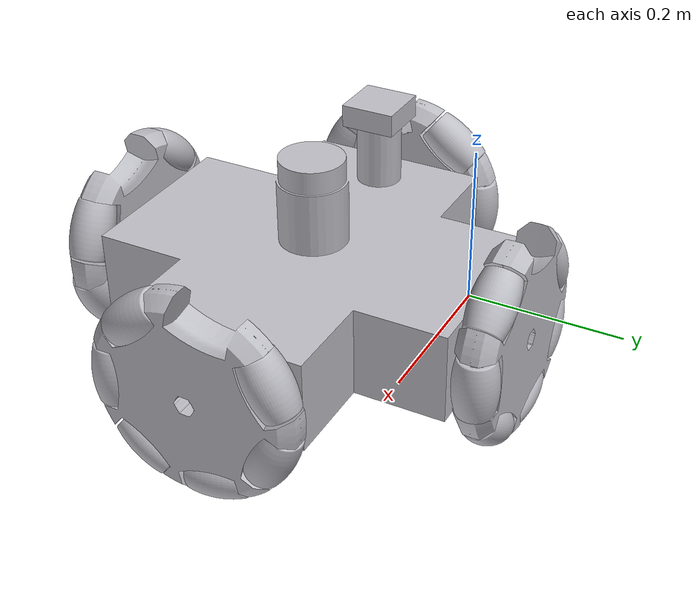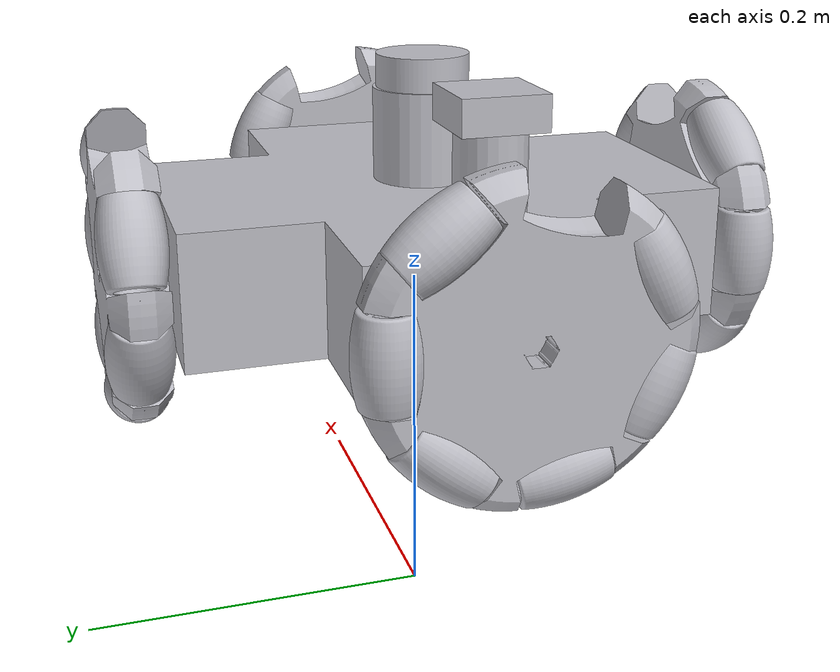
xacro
<?xml version="1.0" ?>
<robot name="robot" xmlns:xacro="http://www.ros.org/wiki/xacro">

<xacro:include filename="$(find robot_description)/urdf/materials.xacro" />
<xacro:include filename="$(find robot_description)/urdf/robot.trans" />
<xacro:include filename="$(find robot_description)/urdf/robot.gazebo" />
<link name ="base_footprint"/>
<link name="base_link">
  <inertial>
    <origin xyz="0.24111155939066492 -0.07977210689211883 0.14685100507879903" rpy="0 0 0"/>
    <mass value="97.70655736264345"/>
    <inertia ixx="1.04738" iyy="1.071388" izz="1.910052" ixy="-0.0" iyz="0.0" ixz="0.013263"/>
  </inertial>
  <visual>
    <origin xyz="0 0 0" rpy="0 0 0"/>
    <geometry>
      <mesh filename="file://$(find robot_description)/meshes/base_link.stl" scale="0.001 0.001 0.001"/>
    </geometry>
    <material name="silver"/>
  </visual>
  <collision>
    <origin xyz="0 0 0" rpy="0 0 0"/>
    <geometry>
      <mesh filename="file://$(find robot_description)/meshes/base_link.stl" scale="0.001 0.001 0.001"/>
    </geometry>
  </collision>
</link>

<link name="wheel_1">
  <inertial>
    <origin xyz="-0.020913365946371967 2.255264061681861e-06 7.483123681401027e-06" rpy="0 0 0"/>
    <mass value="7.092071942604584"/>
    <inertia ixx="0.029308" iyy="0.015702" izz="0.015698" ixy="-0.0" iyz="-2e-06" ixz="-0.0"/>
  </inertial>
  <visual>
    <origin xyz="-0.042768 0.079772 -0.1438" rpy="0 0 0"/>
    <geometry>
      <mesh filename="file://$(find robot_description)/meshes/wheel_1.stl" scale="0.001 0.001 0.001"/>
    </geometry>
    <material name="silver"/>
  </visual>
  <collision>
    <origin xyz="-0.042768 0.079772 -0.1438" rpy="0 0 0"/>
    <geometry>
      <mesh filename="file://$(find robot_description)/meshes/wheel_1.stl" scale="0.001 0.001 0.001"/>
    </geometry>
  </collision>
</link>

<link name="roller_1_4">
  <inertial>
    <origin xyz="0.0002714843752283508 -3.7326580984431423e-07 0.03111365126493347" rpy="0 0 0"/>
    <mass value="0.504347652300611"/>
    <inertia ixx="0.000236" iyy="0.000236" izz="0.000175" ixy="-0.0" iyz="0.0" ixz="-1e-06"/>
  </inertial>
  <visual>
    <origin xyz="-0.020768 -0.011544 -0.110226" rpy="0 0 0"/>
    <geometry>
      <mesh filename="file://$(find robot_description)/meshes/roller_1_4.stl" scale="0.001 0.001 0.001"/>
    </geometry>
    <material name="silver"/>
  </visual>
  <collision>
    <origin xyz="-0.020768 -0.011544 -0.110226" rpy="0 0 0"/>
    <geometry>
      <mesh filename="file://$(find robot_description)/meshes/roller_1_4.stl" scale="0.001 0.001 0.001"/>
    </geometry>
  </collision>
</link>

<link name="roller_1_5">
  <inertial>
    <origin xyz="0.0002722996502091367 0.03042518984782501 -0.0069439932270144444" rpy="0 0 0"/>
    <mass value="0.504347652300611"/>
    <inertia ixx="0.000236" iyy="0.000178" izz="0.000233" ixy="-1e-06" iyz="1.3e-05" ixz="0.0"/>
  </inertial>
  <visual>
    <origin xyz="-0.020768 0.132825 -0.062245" rpy="0 0 0"/>
    <geometry>
      <mesh filename="file://$(find robot_description)/meshes/roller_1_5.stl" scale="0.001 0.001 0.001"/>
    </geometry>
    <material name="silver"/>
  </visual>
  <collision>
    <origin xyz="-0.020768 0.132825 -0.062245" rpy="0 0 0"/>
    <geometry>
      <mesh filename="file://$(find robot_description)/meshes/roller_1_5.stl" scale="0.001 0.001 0.001"/>
    </geometry>
  </collision>
</link>

<link name="roller_1_6">
  <inertial>
    <origin xyz="0.0002714843752285971 0.013499551149427913 -0.028032822727647927" rpy="0 0 0"/>
    <mass value="0.504347652300611"/>
    <inertia ixx="0.000236" iyy="0.000224" izz="0.000186" ixy="-0.0" iyz="2.4e-05" ixz="0.0"/>
  </inertial>
  <visual>
    <origin xyz="-0.020768 0.176612 -0.13443" rpy="0 0 0"/>
    <geometry>
      <mesh filename="file://$(find robot_description)/meshes/roller_1_6.stl" scale="0.001 0.001 0.001"/>
    </geometry>
    <material name="silver"/>
  </visual>
  <collision>
    <origin xyz="-0.020768 0.176612 -0.13443" rpy="0 0 0"/>
    <geometry>
      <mesh filename="file://$(find robot_description)/meshes/roller_1_6.stl" scale="0.001 0.001 0.001"/>
    </geometry>
  </collision>
</link>

<link name="roller_1_2">
  <inertial>
    <origin xyz="0.00027229965020902913 0.02439841665668805 0.019456906056625527" rpy="0 0 0"/>
    <mass value="0.504347652300611"/>
    <inertia ixx="0.000236" iyy="0.000198" izz="0.000212" ixy="-0.0" iyz="-3e-05" ixz="-0.0"/>
  </inertial>
  <visual>
    <origin xyz="-0.020768 0.049087 -0.051474" rpy="0 0 0"/>
    <geometry>
      <mesh filename="file://$(find robot_description)/meshes/roller_1_2.stl" scale="0.001 0.001 0.001"/>
    </geometry>
    <material name="silver"/>
  </visual>
  <collision>
    <origin xyz="-0.020768 0.049087 -0.051474" rpy="0 0 0"/>
    <geometry>
      <mesh filename="file://$(find robot_description)/meshes/roller_1_2.stl" scale="0.001 0.001 0.001"/>
    </geometry>
  </collision>
</link>

<link name="wheel_2">
  <inertial>
    <origin xyz="-2.4030989059231622e-06 -0.020913431895765222 7.483123681567561e-06" rpy="0 0 0"/>
    <mass value="7.092071942604584"/>
    <inertia ixx="0.015702" iyy="0.029308" izz="0.015698" ixy="0.0" iyz="-0.0" ixz="2e-06"/>
  </inertial>
  <visual>
    <origin xyz="-0.242768 0.279772 -0.1438" rpy="0 0 0"/>
    <geometry>
      <mesh filename="file://$(find robot_description)/meshes/wheel_2.stl" scale="0.001 0.001 0.001"/>
    </geometry>
    <material name="silver"/>
  </visual>
  <collision>
    <origin xyz="-0.242768 0.279772 -0.1438" rpy="0 0 0"/>
    <geometry>
      <mesh filename="file://$(find robot_description)/meshes/wheel_2.stl" scale="0.001 0.001 0.001"/>
    </geometry>
  </collision>
</link>

<link name="wheel_3">
  <inertial>
    <origin xyz="0.020913284060920245 -2.469048299535981e-06 7.483123681401027e-06" rpy="0 0 0"/>
    <mass value="7.092071942604584"/>
    <inertia ixx="0.029308" iyy="0.015702" izz="0.015698" ixy="-0.0" iyz="2e-06" ixz="0.0"/>
  </inertial>
  <visual>
    <origin xyz="-0.442768 0.079772 -0.1438" rpy="0 0 0"/>
    <geometry>
      <mesh filename="file://$(find robot_description)/meshes/wheel_3.stl" scale="0.001 0.001 0.001"/>
    </geometry>
    <material name="silver"/>
  </visual>
  <collision>
    <origin xyz="-0.442768 0.079772 -0.1438" rpy="0 0 0"/>
    <geometry>
      <mesh filename="file://$(find robot_description)/meshes/wheel_3.stl" scale="0.001 0.001 0.001"/>
    </geometry>
  </collision>
</link>

<link name="wheel_4">
  <inertial>
    <origin xyz="2.3212134547534458e-06 0.02091321811152741 7.483123681567561e-06" rpy="0 0 0"/>
    <mass value="7.092071942604584"/>
    <inertia ixx="0.015702" iyy="0.029308" izz="0.015698" ixy="0.0" iyz="0.0" ixz="-2e-06"/>
  </inertial>
  <visual>
    <origin xyz="-0.242768 -0.120228 -0.1438" rpy="0 0 0"/>
    <geometry>
      <mesh filename="file://$(find robot_description)/meshes/wheel_4.stl" scale="0.001 0.001 0.001"/>
    </geometry>
    <material name="silver"/>
  </visual>
  <collision>
    <origin xyz="-0.242768 -0.120228 -0.1438" rpy="0 0 0"/>
    <geometry>
      <mesh filename="file://$(find robot_description)/meshes/wheel_4.stl" scale="0.001 0.001 0.001"/>
    </geometry>
  </collision>
</link>

<link name="roller_2_5">
  <inertial>
    <origin xyz="0.024398625276668112 0.00027223369917195317 0.01945693684387137" rpy="0 0 0"/>
    <mass value="0.5043476523006098"/>
    <inertia ixx="0.000198" iyy="0.000236" izz="0.000212" ixy="-0.0" iyz="-0.0" ixz="-3e-05"/>
  </inertial>
  <visual>
    <origin xyz="-0.159584 0.301772 -0.194261" rpy="0 0 0"/>
    <geometry>
      <mesh filename="file://$(find robot_description)/meshes/roller_2_5.stl" scale="0.001 0.001 0.001"/>
    </geometry>
    <material name="silver"/>
  </visual>
  <collision>
    <origin xyz="-0.159584 0.301772 -0.194261" rpy="0 0 0"/>
    <geometry>
      <mesh filename="file://$(find robot_description)/meshes/roller_2_5.stl" scale="0.001 0.001 0.001"/>
    </geometry>
  </collision>
</link>

<link name="roller_2_4">
  <inertial>
    <origin xyz="2.254317875427514e-07 0.0002714184241910389 0.031113651265674877" rpy="0 0 0"/>
    <mass value="0.5043476523006098"/>
    <inertia ixx="0.000236" iyy="0.000236" izz="0.000175" ixy="-0.0" iyz="-1e-06" ixz="0.0"/>
  </inertial>
  <visual>
    <origin xyz="-0.151452 0.301772 -0.110226" rpy="0 0 0"/>
    <geometry>
      <mesh filename="file://$(find robot_description)/meshes/roller_2_4.stl" scale="0.001 0.001 0.001"/>
    </geometry>
    <material name="silver"/>
  </visual>
  <collision>
    <origin xyz="-0.151452 0.301772 -0.110226" rpy="0 0 0"/>
    <geometry>
      <mesh filename="file://$(find robot_description)/meshes/roller_2_4.stl" scale="0.001 0.001 0.001"/>
    </geometry>
  </collision>
</link>

<link name="roller_2_3">
  <inertial>
    <origin xyz="-0.02432552480857772 0.0002714184243299278 0.019398658856668742" rpy="0 0 0"/>
    <mass value="0.5043476523006098"/>
    <inertia ixx="0.000198" iyy="0.000236" izz="0.000212" ixy="0.0" iyz="-0.0" ixz="3e-05"/>
  </inertial>
  <visual>
    <origin xyz="-0.212083 0.301772 -0.051474" rpy="0 0 0"/>
    <geometry>
      <mesh filename="file://$(find robot_description)/meshes/roller_2_3.stl" scale="0.001 0.001 0.001"/>
    </geometry>
    <material name="silver"/>
  </visual>
  <collision>
    <origin xyz="-0.212083 0.301772 -0.051474" rpy="0 0 0"/>
    <geometry>
      <mesh filename="file://$(find robot_description)/meshes/roller_2_3.stl" scale="0.001 0.001 0.001"/>
    </geometry>
  </collision>
</link>

<link name="roller_2_2">
  <inertial>
    <origin xyz="-0.030333258690093567 0.0002714184241914275 -0.006923205040461733" rpy="0 0 0"/>
    <mass value="0.5043476523006098"/>
    <inertia ixx="0.000178" iyy="0.000236" izz="0.000233" ixy="1e-06" iyz="0.0" ixz="-1.3e-05"/>
  </inertial>
  <visual>
    <origin xyz="-0.29582 0.301772 -0.062245" rpy="0 0 0"/>
    <geometry>
      <mesh filename="file://$(find robot_description)/meshes/roller_2_2.stl" scale="0.001 0.001 0.001"/>
    </geometry>
    <material name="silver"/>
  </visual>
  <collision>
    <origin xyz="-0.29582 0.301772 -0.062245" rpy="0 0 0"/>
    <geometry>
      <mesh filename="file://$(find robot_description)/meshes/roller_2_2.stl" scale="0.001 0.001 0.001"/>
    </geometry>
  </collision>
</link>

<link name="roller_2_7">
  <inertial>
    <origin xyz="0.013499883392466938 0.00027141842613015443 -0.028031998836505367" rpy="0 0 0"/>
    <mass value="0.5043476523006098"/>
    <inertia ixx="0.000224" iyy="0.000236" izz="0.000186" ixy="-0.0" iyz="0.0" ixz="2.4e-05"/>
  </inertial>
  <visual>
    <origin xyz="-0.310473 0.301772 -0.21367" rpy="0 0 0"/>
    <geometry>
      <mesh filename="file://$(find robot_description)/meshes/roller_2_7.stl" scale="0.001 0.001 0.001"/>
    </geometry>
    <material name="silver"/>
  </visual>
  <collision>
    <origin xyz="-0.310473 0.301772 -0.21367" rpy="0 0 0"/>
    <geometry>
      <mesh filename="file://$(find robot_description)/meshes/roller_2_7.stl" scale="0.001 0.001 0.001"/>
    </geometry>
  </collision>
</link>

<link name="roller_3_4">
  <inertial>
    <origin xyz="-0.00027156625903568266 0.024325519647217297 0.019398689639133104" rpy="0 0 0"/>
    <mass value="0.5043476523006116"/>
    <inertia ixx="0.000236" iyy="0.000198" izz="0.000212" ixy="0.0" iyz="-3e-05" ixz="0.0"/>
  </inertial>
  <visual>
    <origin xyz="-0.464768 0.162956 -0.194261" rpy="0 0 0"/>
    <geometry>
      <mesh filename="file://$(find robot_description)/meshes/roller_3_4.stl" scale="0.001 0.001 0.001"/>
    </geometry>
    <material name="silver"/>
  </visual>
  <collision>
    <origin xyz="-0.464768 0.162956 -0.194261" rpy="0 0 0"/>
    <geometry>
      <mesh filename="file://$(find robot_description)/meshes/roller_3_4.stl" scale="0.001 0.001 0.001"/>
    </geometry>
  </collision>
</link>

<link name="roller_3_3">
  <inertial>
    <origin xyz="-0.0002715662590359047 1.5948517689823305e-07 0.031113651265698858" rpy="0 0 0"/>
    <mass value="0.5043476523006116"/>
    <inertia ixx="0.000236" iyy="0.000236" izz="0.000175" ixy="-0.0" iyz="-0.0" ixz="1e-06"/>
  </inertial>
  <visual>
    <origin xyz="-0.464768 0.171088 -0.110226" rpy="0 0 0"/>
    <geometry>
      <mesh filename="file://$(find robot_description)/meshes/roller_3_3.stl" scale="0.001 0.001 0.001"/>
    </geometry>
    <material name="silver"/>
  </visual>
  <collision>
    <origin xyz="-0.464768 0.171088 -0.110226" rpy="0 0 0"/>
    <geometry>
      <mesh filename="file://$(find robot_description)/meshes/roller_3_3.stl" scale="0.001 0.001 0.001"/>
    </geometry>
  </collision>
</link>

<link name="roller_3_5">
  <inertial>
    <origin xyz="-0.0002723815340174296 -0.024398630439276786 0.0194569060599211" rpy="0 0 0"/>
    <mass value="0.5043476523006116"/>
    <inertia ixx="0.000236" iyy="0.000198" izz="0.000212" ixy="-0.0" iyz="3e-05" ixz="0.0"/>
  </inertial>
  <visual>
    <origin xyz="-0.464768 0.110457 -0.051474" rpy="0 0 0"/>
    <geometry>
      <mesh filename="file://$(find robot_description)/meshes/roller_3_5.stl" scale="0.001 0.001 0.001"/>
    </geometry>
    <material name="silver"/>
  </visual>
  <collision>
    <origin xyz="-0.464768 0.110457 -0.051474" rpy="0 0 0"/>
    <geometry>
      <mesh filename="file://$(find robot_description)/meshes/roller_3_5.stl" scale="0.001 0.001 0.001"/>
    </geometry>
  </collision>
</link>

<link name="roller_3_7">
  <inertial>
    <origin xyz="-0.00027156625903657083 -0.030333324640129437 -0.006923205037754641" rpy="0 0 0"/>
    <mass value="0.5043476523006116"/>
    <inertia ixx="0.000236" iyy="0.000178" izz="0.000233" ixy="-1e-06" iyz="-1.3e-05" ixz="-0.0"/>
  </inertial>
  <visual>
    <origin xyz="-0.464768 0.02672 -0.062245" rpy="0 0 0"/>
    <geometry>
      <mesh filename="file://$(find robot_description)/meshes/roller_3_7.stl" scale="0.001 0.001 0.001"/>
    </geometry>
    <material name="silver"/>
  </visual>
  <collision>
    <origin xyz="-0.464768 0.02672 -0.062245" rpy="0 0 0"/>
    <geometry>
      <mesh filename="file://$(find robot_description)/meshes/roller_3_7.stl" scale="0.001 0.001 0.001"/>
    </geometry>
  </collision>
</link>

<link name="roller_3_6">
  <inertial>
    <origin xyz="-0.0002715662590359602 -0.013499764937244254 -0.028032822726773834" rpy="0 0 0"/>
    <mass value="0.5043476523006116"/>
    <inertia ixx="0.000236" iyy="0.000224" izz="0.000186" ixy="-0.0" iyz="-2.4e-05" ixz="-0.0"/>
  </inertial>
  <visual>
    <origin xyz="-0.464768 -0.017068 -0.13443" rpy="0 0 0"/>
    <geometry>
      <mesh filename="file://$(find robot_description)/meshes/roller_3_6.stl" scale="0.001 0.001 0.001"/>
    </geometry>
    <material name="silver"/>
  </visual>
  <collision>
    <origin xyz="-0.464768 -0.017068 -0.13443" rpy="0 0 0"/>
    <geometry>
      <mesh filename="file://$(find robot_description)/meshes/roller_3_6.stl" scale="0.001 0.001 0.001"/>
    </geometry>
  </collision>
</link>

<link name="roller_4_3">
  <inertial>
    <origin xyz="-3.073187158642021e-07 -0.0002716322084291567 0.03111365126568784" rpy="0 0 0"/>
    <mass value="0.5043476523006097"/>
    <inertia ixx="0.000236" iyy="0.000236" izz="0.000175" ixy="0.0" iyz="1e-06" ixz="0.0"/>
  </inertial>
  <visual>
    <origin xyz="-0.334084 -0.142228 -0.110226" rpy="0 0 0"/>
    <geometry>
      <mesh filename="file://$(find robot_description)/meshes/roller_4_3.stl" scale="0.001 0.001 0.001"/>
    </geometry>
    <material name="silver"/>
  </visual>
  <collision>
    <origin xyz="-0.334084 -0.142228 -0.110226" rpy="0 0 0"/>
    <geometry>
      <mesh filename="file://$(find robot_description)/meshes/roller_4_3.stl" scale="0.001 0.001 0.001"/>
    </geometry>
  </collision>
</link>

<link name="roller_4_4">
  <inertial>
    <origin xyz="0.024325442923425256 -0.00027163220842882363 0.019398658856316413" rpy="0 0 0"/>
    <mass value="0.5043476523006097"/>
    <inertia ixx="0.000198" iyy="0.000236" izz="0.000212" ixy="0.0" iyz="0.0" ixz="-3e-05"/>
  </inertial>
  <visual>
    <origin xyz="-0.273453 -0.142228 -0.051474" rpy="0 0 0"/>
    <geometry>
      <mesh filename="file://$(find robot_description)/meshes/roller_4_4.stl" scale="0.001 0.001 0.001"/>
    </geometry>
    <material name="silver"/>
  </visual>
  <collision>
    <origin xyz="-0.273453 -0.142228 -0.051474" rpy="0 0 0"/>
    <geometry>
      <mesh filename="file://$(find robot_description)/meshes/roller_4_4.stl" scale="0.001 0.001 0.001"/>
    </geometry>
  </collision>
</link>

<link name="roller_4_7">
  <inertial>
    <origin xyz="-0.013499767590025025 0.0002714184242297579 -0.02803283743471971" rpy="0 0 0"/>
    <mass value="0.5043476523006097"/>
    <inertia ixx="0.000224" iyy="0.000236" izz="0.000186" ixy="0.0" iyz="0.0" ixz="-2.4e-05"/>
  </inertial>
  <visual>
    <origin xyz="-0.175111 -0.142228 -0.213667" rpy="0 0 0"/>
    <geometry>
      <mesh filename="file://$(find robot_description)/meshes/roller_4_7.stl" scale="0.001 0.001 0.001"/>
    </geometry>
    <material name="silver"/>
  </visual>
  <collision>
    <origin xyz="-0.175111 -0.142228 -0.213667" rpy="0 0 0"/>
    <geometry>
      <mesh filename="file://$(find robot_description)/meshes/roller_4_7.stl" scale="0.001 0.001 0.001"/>
    </geometry>
  </collision>
</link>

<link name="lidar_1">
  <inertial>
    <origin xyz="-4.094272545995814e-08 -1.0689211875358762e-07 0.012500469026049621" rpy="0 0 0"/>
    <mass value="0.7552585088770711"/>
    <inertia ixx="0.000271" iyy="0.000271" izz="0.000463" ixy="-0.0" iyz="-0.0" ixz="-0.0"/>
  </inertial>
  <visual>
    <origin xyz="-0.242768 0.079772 -0.2638" rpy="0 0 0"/>
    <geometry>
      <mesh filename="file://$(find robot_description)/meshes/lidar_1.stl" scale="0.001 0.001 0.001"/>
    </geometry>
    <material name="silver"/>
  </visual>
  <collision>
    <origin xyz="-0.242768 0.079772 -0.2638" rpy="0 0 0"/>
    <geometry>
      <mesh filename="file://$(find robot_description)/meshes/lidar_1.stl" scale="0.001 0.001 0.001"/>
    </geometry>
  </collision>
</link>

<link name="camera_1">
  <inertial>
    <origin xyz="-4.094272545995814e-08 -1.0689211872583204e-07 0.012500469026049121" rpy="0 0 0"/>
    <mass value="0.7064999999999999"/>
    <inertia ixx="0.000249" iyy="0.000249" izz="0.000424" ixy="0.0" iyz="0.0" ixz="0.0"/>
  </inertial>
  <visual>
    <origin xyz="-0.092768 0.079772 -0.2638" rpy="0 0 0"/>
    <geometry>
      <mesh filename="file://$(find robot_description)/meshes/camera_1.stl" scale="0.001 0.001 0.001"/>
    </geometry>
    <material name="silver"/>
  </visual>
  <collision>
    <origin xyz="-0.092768 0.079772 -0.2638" rpy="0 0 0"/>
    <geometry>
      <mesh filename="file://$(find robot_description)/meshes/camera_1.stl" scale="0.001 0.001 0.001"/>
    </geometry>
  </collision>
</link>

<link name="roller_4_2">
  <inertial>
    <origin xyz="-0.024398707163050704 -0.0002724474834089885 0.01945693684272362" rpy="0 0 0"/>
    <mass value="0.5043476523006097"/>
    <inertia ixx="0.000198" iyy="0.000236" izz="0.000212" ixy="-0.0" iyz="0.0" ixz="3e-05"/>
  </inertial>
  <visual>
    <origin xyz="-0.325952 -0.142228 -0.194261" rpy="0 0 0"/>
    <geometry>
      <mesh filename="file://$(find robot_description)/meshes/roller_4_2.stl" scale="0.001 0.001 0.001"/>
    </geometry>
    <material name="silver"/>
  </visual>
  <collision>
    <origin xyz="-0.325952 -0.142228 -0.194261" rpy="0 0 0"/>
    <geometry>
      <mesh filename="file://$(find robot_description)/meshes/roller_4_2.stl" scale="0.001 0.001 0.001"/>
    </geometry>
  </collision>
</link>

<link name="roller_1_1">
  <inertial>
    <origin xyz="0.0002714843752286353 -0.024325733428609123 0.01939868964147415" rpy="0 0 0"/>
    <mass value="0.504347652300611"/>
    <inertia ixx="0.000236" iyy="0.000198" izz="0.000212" ixy="0.0" iyz="3e-05" ixz="-0.0"/>
  </inertial>
  <visual>
    <origin xyz="-0.020768 -0.003412 -0.194261" rpy="0 0 0"/>
    <geometry>
      <mesh filename="file://$(find robot_description)/meshes/roller_1_1.stl" scale="0.001 0.001 0.001"/>
    </geometry>
    <material name="silver"/>
  </visual>
  <collision>
    <origin xyz="-0.020768 -0.003412 -0.194261" rpy="0 0 0"/>
    <geometry>
      <mesh filename="file://$(find robot_description)/meshes/roller_1_1.stl" scale="0.001 0.001 0.001"/>
    </geometry>
  </collision>
</link>

<link name="roller_1_3">
  <inertial>
    <origin xyz="0.00027148437633910463 -0.013500031225505638 -0.028031998836560157" rpy="0 0 0"/>
    <mass value="0.504347652300611"/>
    <inertia ixx="0.000236" iyy="0.000224" izz="0.000186" ixy="0.0" iyz="-2.4e-05" ixz="0.0"/>
  </inertial>
  <visual>
    <origin xyz="-0.020768 0.147477 -0.21367" rpy="0 0 0"/>
    <geometry>
      <mesh filename="file://$(find robot_description)/meshes/roller_1_3.stl" scale="0.001 0.001 0.001"/>
    </geometry>
    <material name="silver"/>
  </visual>
  <collision>
    <origin xyz="-0.020768 0.147477 -0.21367" rpy="0 0 0"/>
    <geometry>
      <mesh filename="file://$(find robot_description)/meshes/roller_1_3.stl" scale="0.001 0.001 0.001"/>
    </geometry>
  </collision>
</link>

<link name="roller_2_1">
  <inertial>
    <origin xyz="-0.013499698985333486 0.00027141842419081685 -0.028032822727958817" rpy="0 0 0"/>
    <mass value="0.5043476523006098"/>
    <inertia ixx="0.000224" iyy="0.000236" izz="0.000186" ixy="0.0" iyz="0.0" ixz="-2.4e-05"/>
  </inertial>
  <visual>
    <origin xyz="-0.339608 0.301772 -0.13443" rpy="0 0 0"/>
    <geometry>
      <mesh filename="file://$(find robot_description)/meshes/roller_2_1.stl" scale="0.001 0.001 0.001"/>
    </geometry>
    <material name="silver"/>
  </visual>
  <collision>
    <origin xyz="-0.339608 0.301772 -0.13443" rpy="0 0 0"/>
    <geometry>
      <mesh filename="file://$(find robot_description)/meshes/roller_2_1.stl" scale="0.001 0.001 0.001"/>
    </geometry>
  </collision>
</link>

<link name="roller_3_1">
  <inertial>
    <origin xyz="-0.00027156626111396465 0.013499817443843461 -0.0280319988361602" rpy="0 0 0"/>
    <mass value="0.5043476523006116"/>
    <inertia ixx="0.000236" iyy="0.000224" izz="0.000186" ixy="0.0" iyz="2.4e-05" ixz="-0.0"/>
  </inertial>
  <visual>
    <origin xyz="-0.464768 0.012067 -0.21367" rpy="0 0 0"/>
    <geometry>
      <mesh filename="file://$(find robot_description)/meshes/roller_3_1.stl" scale="0.001 0.001 0.001"/>
    </geometry>
    <material name="silver"/>
  </visual>
  <collision>
    <origin xyz="-0.464768 0.012067 -0.21367" rpy="0 0 0"/>
    <geometry>
      <mesh filename="file://$(find robot_description)/meshes/roller_3_1.stl" scale="0.001 0.001 0.001"/>
    </geometry>
  </collision>
</link>

<link name="roller_4_1">
  <inertial>
    <origin xyz="0.013499669003557285 0.0002714184242298967 -0.028032533585066993" rpy="0 0 0"/>
    <mass value="0.5043476523006097"/>
    <inertia ixx="0.000224" iyy="0.000236" izz="0.000186" ixy="-0.0" iyz="0.0" ixz="2.4e-05"/>
  </inertial>
  <visual>
    <origin xyz="-0.145961 -0.142228 -0.134465" rpy="0 0 0"/>
    <geometry>
      <mesh filename="file://$(find robot_description)/meshes/roller_4_1.stl" scale="0.001 0.001 0.001"/>
    </geometry>
    <material name="silver"/>
  </visual>
  <collision>
    <origin xyz="-0.145961 -0.142228 -0.134465" rpy="0 0 0"/>
    <geometry>
      <mesh filename="file://$(find robot_description)/meshes/roller_4_1.stl" scale="0.001 0.001 0.001"/>
    </geometry>
  </collision>
</link>

<link name="roller_4_6">
  <inertial>
    <origin xyz="0.030333176804983902 -0.0002716322084280465 -0.006923205039024417" rpy="0 0 0"/>
    <mass value="0.5043476523006097"/>
    <inertia ixx="0.000178" iyy="0.000236" izz="0.000233" ixy="1e-06" iyz="-0.0" ixz="1.3e-05"/>
  </inertial>
  <visual>
    <origin xyz="-0.189716 -0.142228 -0.062245" rpy="0 0 0"/>
    <geometry>
      <mesh filename="file://$(find robot_description)/meshes/roller_4_6.stl" scale="0.001 0.001 0.001"/>
    </geometry>
    <material name="silver"/>
  </visual>
  <collision>
    <origin xyz="-0.189716 -0.142228 -0.062245" rpy="0 0 0"/>
    <geometry>
      <mesh filename="file://$(find robot_description)/meshes/roller_4_6.stl" scale="0.001 0.001 0.001"/>
    </geometry>
  </collision>
</link>
<joint name="fixed" type="fixed">
  <parent link="base_footprint"/>
  <child link="base_link"/>
</joint>
<joint name="Revolute 34" type="continuous">
  <origin xyz="0.037768 -0.079772 0.1438" rpy="0 0 0"/>
  <parent link="base_link"/>
  <child link="wheel_1"/>
  <axis xyz="-1.0 0.0 0.0"/>
</joint>

<joint name="Revolute 37" type="continuous">
  <origin xyz="-0.022 0.091316 -0.033574" rpy="0 0 0"/>
  <parent link="wheel_1"/>
  <child link="roller_1_4"/>
  <axis xyz="0.008727 0.0 0.999962"/>
</joint>

<joint name="Revolute 38" type="continuous">
  <origin xyz="-0.022 -0.053053 -0.081555" rpy="0 0 0"/>
  <parent link="wheel_1"/>
  <child link="roller_1_5"/>
  <axis xyz="0.008727 0.974891 -0.222512"/>
</joint>

<joint name="Revolute 39" type="continuous">
  <origin xyz="-0.022 -0.09684 -0.00937" rpy="0 0 0"/>
  <parent link="wheel_1"/>
  <child link="roller_1_6"/>
  <axis xyz="0.008727 0.433867 -0.900935"/>
</joint>

<joint name="Revolute 41" type="continuous">
  <origin xyz="-0.022 0.030685 -0.092326" rpy="0 0 0"/>
  <parent link="wheel_1"/>
  <child link="roller_1_2"/>
  <axis xyz="0.008727 0.781802 0.623466"/>
</joint>

<joint name="Revolute 42" type="continuous">
  <origin xyz="0.242768 -0.284772 0.1438" rpy="0 0 0"/>
  <parent link="base_link"/>
  <child link="wheel_2"/>
  <axis xyz="-0.0 -1.0 -0.0"/>
</joint>

<joint name="Revolute 43" type="continuous">
  <origin xyz="0.447768 -0.079772 0.1438" rpy="0 0 0"/>
  <parent link="base_link"/>
  <child link="wheel_3"/>
  <axis xyz="1.0 -0.0 -0.0"/>
</joint>

<joint name="Revolute 44" type="continuous">
  <origin xyz="0.242768 0.125228 0.1438" rpy="0 0 0"/>
  <parent link="base_link"/>
  <child link="wheel_4"/>
  <axis xyz="0.0 1.0 0.0"/>
</joint>

<joint name="Revolute 46" type="continuous">
  <origin xyz="-0.083184 -0.022 0.050461" rpy="0 0 0"/>
  <parent link="wheel_2"/>
  <child link="roller_2_5"/>
  <axis xyz="0.781802 0.008727 0.623466"/>
</joint>

<joint name="Revolute 47" type="continuous">
  <origin xyz="-0.091316 -0.022 -0.033574" rpy="0 0 0"/>
  <parent link="wheel_2"/>
  <child link="roller_2_4"/>
  <axis xyz="-0.0 0.008727 0.999962"/>
</joint>

<joint name="Revolute 48" type="continuous">
  <origin xyz="-0.030685 -0.022 -0.092326" rpy="0 0 0"/>
  <parent link="wheel_2"/>
  <child link="roller_2_3"/>
  <axis xyz="-0.781802 0.008727 0.623466"/>
</joint>

<joint name="Revolute 49" type="continuous">
  <origin xyz="0.053052 -0.022 -0.081555" rpy="0 0 0"/>
  <parent link="wheel_2"/>
  <child link="roller_2_2"/>
  <axis xyz="-0.974891 0.008727 -0.222512"/>
</joint>

<joint name="Revolute 51" type="continuous">
  <origin xyz="0.067705 -0.022 0.06987" rpy="0 0 0"/>
  <parent link="wheel_2"/>
  <child link="roller_2_7"/>
  <axis xyz="0.433867 0.008727 -0.900935"/>
</joint>

<joint name="Revolute 53" type="continuous">
  <origin xyz="0.022 -0.083184 0.050461" rpy="0 0 0"/>
  <parent link="wheel_3"/>
  <child link="roller_3_4"/>
  <axis xyz="-0.008727 0.781802 0.623466"/>
</joint>

<joint name="Revolute 54" type="continuous">
  <origin xyz="0.022 -0.091316 -0.033574" rpy="0 0 0"/>
  <parent link="wheel_3"/>
  <child link="roller_3_3"/>
  <axis xyz="-0.008727 -0.0 0.999962"/>
</joint>

<joint name="Revolute 55" type="continuous">
  <origin xyz="0.022 -0.030685 -0.092326" rpy="0 0 0"/>
  <parent link="wheel_3"/>
  <child link="roller_3_5"/>
  <axis xyz="-0.008727 -0.781802 0.623466"/>
</joint>

<joint name="Revolute 56" type="continuous">
  <origin xyz="0.022 0.053052 -0.081555" rpy="0 0 0"/>
  <parent link="wheel_3"/>
  <child link="roller_3_7"/>
  <axis xyz="-0.008727 -0.974891 -0.222512"/>
</joint>

<joint name="Revolute 57" type="continuous">
  <origin xyz="0.022 0.09684 -0.00937" rpy="0 0 0"/>
  <parent link="wheel_3"/>
  <child link="roller_3_6"/>
  <axis xyz="-0.008727 -0.433867 -0.900935"/>
</joint>

<joint name="Revolute 61" type="continuous">
  <origin xyz="0.091316 0.022 -0.033574" rpy="0 0 0"/>
  <parent link="wheel_4"/>
  <child link="roller_4_3"/>
  <axis xyz="0.0 -0.008727 0.999962"/>
</joint>

<joint name="Revolute 62" type="continuous">
  <origin xyz="0.030685 0.022 -0.092326" rpy="0 0 0"/>
  <parent link="wheel_4"/>
  <child link="roller_4_4"/>
  <axis xyz="0.781802 -0.008727 0.623466"/>
</joint>

<joint name="Revolute 65" type="continuous">
  <origin xyz="-0.067657 0.022 0.069867" rpy="0 0 0"/>
  <parent link="wheel_4"/>
  <child link="roller_4_7"/>
  <axis xyz="-0.433867 0.008727 -0.900935"/>
</joint>

<joint name="Rigid 66" type="fixed">
  <origin xyz="0.242768 -0.079772 0.2638" rpy="0 0 0"/>
  <parent link="base_link"/>
  <child link="lidar_1"/>
</joint>

<joint name="Rigid 67" type="fixed">
  <origin xyz="0.092768 -0.079772 0.2638" rpy="0 0 0"/>
  <parent link="base_link"/>
  <child link="camera_1"/>
</joint>

<joint name="Revolute 75" type="continuous">
  <origin xyz="0.083184 0.022 0.050461" rpy="0 0 0"/>
  <parent link="wheel_4"/>
  <child link="roller_4_2"/>
  <axis xyz="-0.781802 -0.008727 0.623466"/>
</joint>

<joint name="Revolute 76" type="continuous">
  <origin xyz="-0.022 0.083184 0.050461" rpy="0 0 0"/>
  <parent link="wheel_1"/>
  <child link="roller_1_1"/>
  <axis xyz="0.008727 -0.781802 0.623466"/>
</joint>

<joint name="Revolute 78" type="continuous">
  <origin xyz="-0.022 -0.067705 0.06987" rpy="0 0 0"/>
  <parent link="wheel_1"/>
  <child link="roller_1_3"/>
  <axis xyz="0.008727 -0.433867 -0.900935"/>
</joint>

<joint name="Revolute 79" type="continuous">
  <origin xyz="0.09684 -0.022 -0.00937" rpy="0 0 0"/>
  <parent link="wheel_2"/>
  <child link="roller_2_1"/>
  <axis xyz="-0.433867 0.008727 -0.900935"/>
</joint>

<joint name="Revolute 81" type="continuous">
  <origin xyz="0.022 0.067705 0.06987" rpy="0 0 0"/>
  <parent link="wheel_3"/>
  <child link="roller_3_1"/>
  <axis xyz="-0.008727 0.433867 -0.900935"/>
</joint>

<joint name="Revolute 83" type="continuous">
  <origin xyz="-0.096807 0.022 -0.009335" rpy="0 0 0"/>
  <parent link="wheel_4"/>
  <child link="roller_4_1"/>
  <axis xyz="0.433867 0.008727 -0.900935"/>
</joint>

<joint name="Revolute 84" type="continuous">
  <origin xyz="-0.053052 0.022 -0.081555" rpy="0 0 0"/>
  <parent link="wheel_4"/>
  <child link="roller_4_6"/>
  <axis xyz="0.974891 -0.008727 -0.222512"/>
</joint>

</robot>

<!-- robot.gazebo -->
<robot name="robot" xmlns:xacro="http://www.ros.org/wiki/xacro" >

<xacro:property name="body_color" value="Gazebo/Silver" />
<xacro:property name="laser_visual"  value="true"/>
<gazebo>
  <plugin name="gazebo_ros2_control" filename="libgazebo_ros2_control.so"/>
  <robot_namespace>/robot</robot_namespace>
  <parameters>/home/user/omni_ros2/src/robot_description/config/omni_controller.yaml</parameters>
</gazebo>
<gazebo reference="base_link">
  <material>${body_color}</material>
  <mu1>10000</mu1>
  <mu2>10000</mu2>
  <self_collide>true</self_collide>
  <gravity>true</gravity>
</gazebo>

<gazebo reference="wheel_1">
  <material>${body_color}</material>
  <mu1>10000</mu1>
  <mu2>10000</mu2>
  <self_collide>true</self_collide>
</gazebo>

<gazebo reference="roller_1_4">
  <material>${body_color}</material>
  <mu1>10000</mu1>
  <mu2>10000</mu2>
  <self_collide>false</self_collide>
</gazebo>

<gazebo reference="roller_1_5">
  <material>${body_color}</material>
  <mu1>10000</mu1>
  <mu2>10000</mu2>
  <self_collide>false</self_collide>
</gazebo>

<gazebo reference="roller_1_6">
  <material>${body_color}</material>
  <mu1>10000</mu1>
  <mu2>10000</mu2>
  <self_collide>false</self_collide>
</gazebo>

<gazebo reference="roller_1_2">
  <material>${body_color}</material>
  <mu1>10000</mu1>
  <mu2>10000</mu2>
  <self_collide>false</self_collide>
</gazebo>

<gazebo reference="wheel_2">
  <material>${body_color}</material>
  <mu1>10000</mu1>
  <mu2>10000</mu2>
  <self_collide>true</self_collide>
</gazebo>

<gazebo reference="wheel_3">
  <material>${body_color}</material>
  <mu1>10000</mu1>
  <mu2>10000</mu2>
  <self_collide>true</self_collide>
</gazebo>

<gazebo reference="wheel_4">
  <material>${body_color}</material>
  <mu1>10000</mu1>
  <mu2>10000</mu2>
  <self_collide>true</self_collide>
</gazebo>

<gazebo reference="roller_2_5">
  <material>${body_color}</material>
  <mu1>10000</mu1>
  <mu2>10000</mu2>
  <self_collide>false</self_collide>
</gazebo>

<gazebo reference="roller_2_4">
  <material>${body_color}</material>
  <mu1>10000</mu1>
  <mu2>10000</mu2>
  <self_collide>false</self_collide>
</gazebo>

<gazebo reference="roller_2_3">
  <material>${body_color}</material>
  <mu1>10000</mu1>
  <mu2>10000</mu2>
  <self_collide>false</self_collide>
</gazebo>

<gazebo reference="roller_2_2">
  <material>${body_color}</material>
  <mu1>10000</mu1>
  <mu2>10000</mu2>
  <self_collide>false</self_collide>
</gazebo>

<gazebo reference="roller_2_7">
  <material>${body_color}</material>
  <mu1>10000</mu1>
  <mu2>10000</mu2>
  <self_collide>false</self_collide>
</gazebo>

<gazebo reference="roller_3_4">
  <material>${body_color}</material>
  <mu1>10000</mu1>
  <mu2>10000</mu2>
  <self_collide>false</self_collide>
</gazebo>

<gazebo reference="roller_3_3">
  <material>${body_color}</material>
  <mu1>10000</mu1>
  <mu2>10000</mu2>
  <self_collide>false</self_collide>
</gazebo>

<gazebo reference="roller_3_5">
  <material>${body_color}</material>
  <mu1>10000</mu1>
  <mu2>10000</mu2>
  <self_collide>false</self_collide>
</gazebo>

<gazebo reference="roller_3_7">
  <material>${body_color}</material>
  <mu1>10000</mu1>
  <mu2>10000</mu2>
  <self_collide>false</self_collide>
</gazebo>

<gazebo reference="roller_3_6">
  <material>${body_color}</material>
  <mu1>10000</mu1>
  <mu2>10000</mu2>
  <self_collide>false</self_collide>
</gazebo>

<gazebo reference="roller_4_3">
  <material>${body_color}</material>
  <mu1>10000</mu1>
  <mu2>10000</mu2>
  <self_collide>false</self_collide>
</gazebo>

<gazebo reference="roller_4_4">
  <material>${body_color}</material>
  <mu1>10000</mu1>
  <mu2>10000</mu2>
  <self_collide>false</self_collide>
</gazebo>

<gazebo reference="roller_4_7">
  <material>${body_color}</material>
  <mu1>10000</mu1>
  <mu2>10000</mu2>
  <self_collide>false</self_collide>
</gazebo>

<gazebo reference="lidar_1">
  <material>${body_color}</material>
  <mu1>10000</mu1>
  <mu2>10000</mu2>
  <self_collide>true</self_collide>
</gazebo>

<gazebo reference="camera_1">
  <material>${body_color}</material>
  <mu1>10000</mu1>
  <mu2>10000</mu2>
  <self_collide>true</self_collide>
</gazebo>

<gazebo reference="roller_4_2">
  <material>${body_color}</material>
  <mu1>10000</mu1>
  <mu2>10000</mu2>
  <self_collide>false</self_collide>
</gazebo>

<gazebo reference="roller_1_1">
  <material>${body_color}</material>
  <mu1>10000</mu1>
  <mu2>10000</mu2>
  <self_collide>false</self_collide>
</gazebo>

<gazebo reference="roller_1_3">
  <material>${body_color}</material>
  <mu1>10000</mu1>
  <mu2>10000</mu2>
  <self_collide>false</self_collide>
</gazebo>

<gazebo reference="roller_2_1">
  <material>${body_color}</material>
  <mu1>10000</mu1>
  <mu2>10000</mu2>
  <self_collide>false</self_collide>
</gazebo>

<gazebo reference="roller_3_1">
  <material>${body_color}</material>
  <mu1>10000</mu1>
  <mu2>10000</mu2>
  <self_collide>false</self_collide>
</gazebo>

<gazebo reference="roller_4_1">
  <material>${body_color}</material>
  <mu1>10000</mu1>
  <mu2>10000</mu2>
  <self_collide>false</self_collide>
</gazebo>

<gazebo reference="roller_4_6">
  <material>${body_color}</material>
  <mu1>10000</mu1>
  <mu2>10000</mu2>
  <self_collide>false</self_collide>
</gazebo>

<gazebo reference="lidar_1">
  <material>${body_color}</material>
  <mu1>10000</mu1>
  <mu2>10000</mu2>
  <selfCollide>true</selfCollide>
  <sensor type="ray" name="hls_lfcd_lds">
      <pose>0 0 0 0 0 0</pose>
      <always_on>true</always_on>
      <update_rate>5</update_rate>
      <visualize>${laser_visual}</visualize>
      <ray>
        <scan>
          <horizontal>
            <samples>720</samples>
            <resolution>1</resolution>
            <min_angle>0</min_angle>
            <max_angle>6.28319</max_angle>
          </horizontal>
        </scan>
        <range>
          <min>0.3</min>
          <max>12.0</max>
          <resolution>0.01</resolution>
        </range>
        <noise>
          <type>gaussian</type>
          <mean>0.0</mean>
          <stddev>0.01</stddev>
        </noise>
      </ray>
      <plugin name="gazebo_ros_hls_lfcd_controller" filename="libgazebo_ros_ray_sensor.so">
      <ros>
            <namespace>/robot</namespace>
        <remapping>~/out:=scan</remapping>
      </ros>
      <output_type>sensor_msgs/LaserScan</output_type>
      <frame_name>lidar_1</frame_name>
    </plugin>
    </sensor>
</gazebo>

<ros2_control name="GazeboSystem" type="system">
  <hardware>
    <plugin>gazebo_ros2_control/GazeboSystem</plugin>
  </hardware>
  <joint name="Revolute_34">
      <command_interface name="position">
      </command_interface>
      <state_interface name="position"/>
      <state_interface name="velocity"/>
      <state_interface name="effort"/>
    </joint>
    <joint name="Revolute_42">
      <command_interface name="position">
      </command_interface>
      <state_interface name="position"/>
      <state_interface name="velocity"/>
      <state_interface name="effort"/>
    </joint>
    <joint name="Revolute_43">
      <command_interface name="position">
      </command_interface>
      <state_interface name="position"/>
      <state_interface name="velocity"/>
      <state_interface name="effort"/>
    </joint>
    <joint name="Revolute_44">
      <command_interface name="position">
      </command_interface>
      <state_interface name="position"/>
      <state_interface name="velocity"/>
      <state_interface name="effort"/>
    </joint>
</ros2_control>
</robot>
